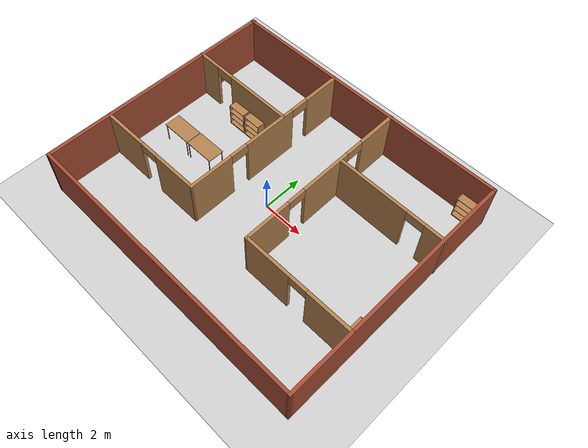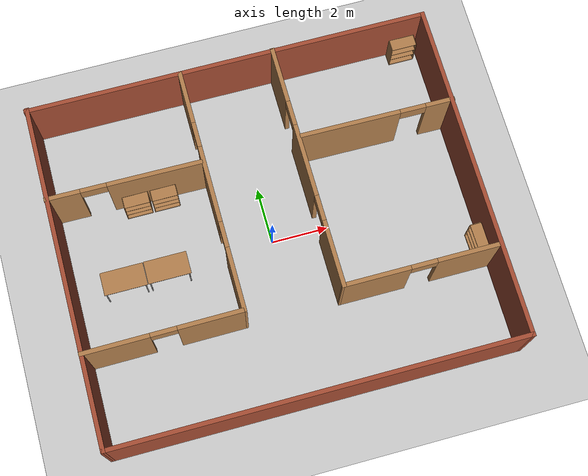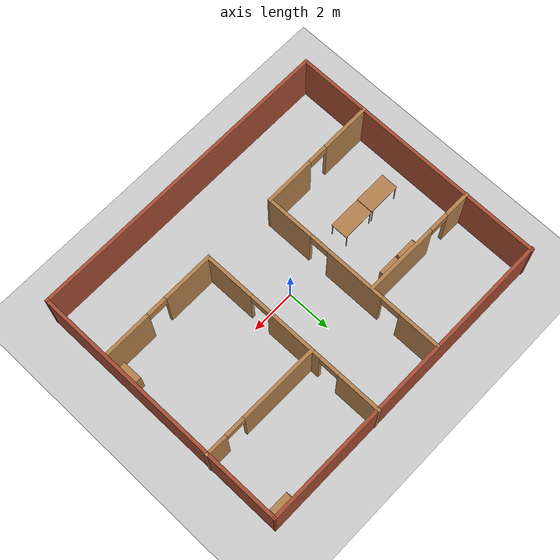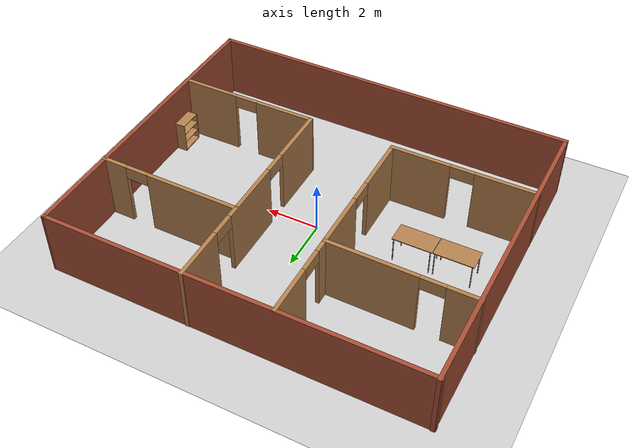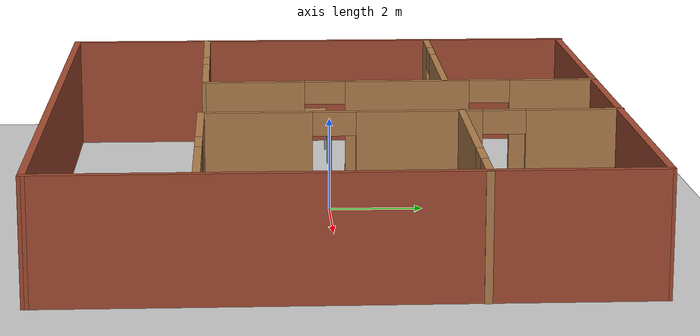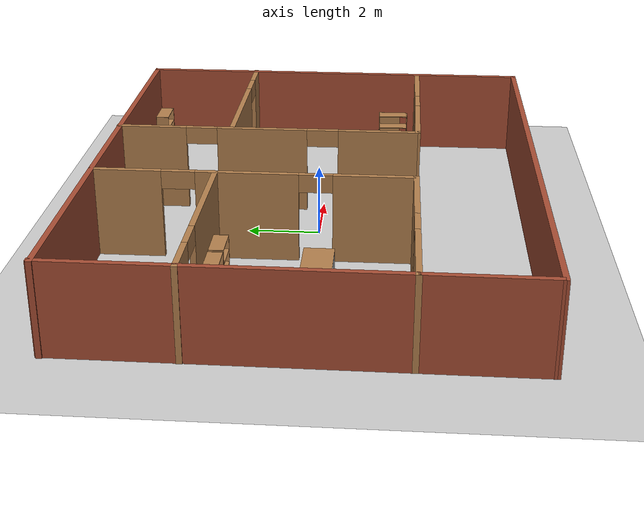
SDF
<sdf version="1.7">
 <world name="default">
  <light name="sun" type="directional">
   <pose>0 0 10 0 -0 0</pose>
   <diffuse>0.8 0.8 0.8 1</diffuse>
   <specular>0.2 0.2 0.2 1</specular>
   <attenuation>
    <range>1000</range>
    <constant>0.9</constant>
    <linear>0.01</linear>
    <quadratic>0.001</quadratic>
   </attenuation>
   <direction>-0.5 0.1 -0.9</direction>
   <spot><inner_angle>0</inner_angle><outer_angle>0</outer_angle><falloff>0</falloff></spot>
  </light>
  <model name="ground_plane">
   <static>1</static>
   <link name="link">
    <collision name="collision">
     <geometry><plane><normal>0 0 1</normal><size>100 100</size></plane></geometry>
     <surface>
      <contact><collide_bitmask>65535</collide_bitmask></contact>
      <friction><ode><mu>100</mu><mu2>50</mu2></ode></friction>
     </surface>
    </collision>
    <visual name="visual">
     <cast_shadows>0</cast_shadows>
     <geometry><plane><normal>0 0 1</normal><size>100 100</size></plane></geometry>
     <material>
      <script><uri>file://media/materials/scripts/gazebo.material</uri><name>Gazebo/Grey</name></script>
     </material>
    </visual>
   </link>
  </model>
  <gravity>0 0 -9.8</gravity>
  <magnetic_field>6e-06 2.3e-05 -4.2e-05</magnetic_field>
  <atmosphere type="adiabatic"/>
  <physics type="ode">
   <max_step_size>0.001</max_step_size>
   <real_time_factor>1</real_time_factor>
   <real_time_update_rate>1000</real_time_update_rate>
  </physics>
  <scene><ambient>0.4 0.4 0.4 1</ambient><background>0.7 0.7 0.7 1</background><shadows>1</shadows></scene>
  <audio><device>default</device></audio>
  <spherical_coordinates>
   <surface_model>EARTH_WGS84</surface_model>
   <latitude_deg>0</latitude_deg>
   <longitude_deg>0</longitude_deg>
   <elevation>0</elevation>
   <heading_deg>0</heading_deg>
  </spherical_coordinates>
  <model name="my_floor">
   <pose>0.013055 0.069718 0 0 -0 0</pose>
   <link name="Wall_20">
    <collision name="Wall_20_Collision">
     <geometry><box><size>14.249 0.15 2.5</size></box></geometry>
     <pose>0 0 1.25 0 -0 0</pose>
    </collision>
    <visual name="Wall_20_Visual">
     <pose>0 0 1.25 0 -0 0</pose>
     <geometry><box><size>14.249 0.15 2.5</size></box></geometry>
     <material>
      <script><uri>file://media/materials/scripts/gazebo.material</uri><name>Gazebo/Bricks</name></script>
      <ambient>1 1 1 1</ambient>
     </material>
     <meta><layer>0</layer></meta>
    </visual>
    <pose>-0.016798 5.87688 0 0 -0 -0.001631</pose>
   </link>
   <link name="Wall_21">
    <collision name="Wall_21_Collision">
     <geometry><box><size>11.9339 0.15 2.5</size></box></geometry>
     <pose>0 0 1.25 0 -0 0</pose>
    </collision>
    <visual name="Wall_21_Visual">
     <pose>0 0 1.25 0 -0 0</pose>
     <geometry><box><size>11.9339 0.15 2.5</size></box></geometry>
     <material>
      <script><uri>file://media/materials/scripts/gazebo.material</uri><name>Gazebo/Bricks</name></script>
      <ambient>1 1 1 1</ambient>
     </material>
     <meta><layer>0</layer></meta>
    </visual>
    <pose>7.0492 -0.026575 0 0 -0 -1.568</pose>
   </link>
   <link name="Wall_22">
    <collision name="Wall_22_Collision">
     <geometry><box><size>14.2747 0.15 2.5</size></box></geometry>
     <pose>0 0 1.25 0 -0 0</pose>
    </collision>
    <visual name="Wall_22_Visual">
     <pose>0 0 1.25 0 -0 0</pose>
     <geometry><box><size>14.2747 0.15 2.5</size></box></geometry>
     <material>
      <script><uri>file://media/materials/scripts/gazebo.material</uri><name>Gazebo/Bricks</name></script>
      <ambient>1 1 1 1</ambient>
     </material>
     <meta><layer>0</layer></meta>
    </visual>
    <pose>0.003336 -5.91852 0 0 -0 3.14159</pose>
   </link>
   <link name="Wall_23">
    <collision name="Wall_23_Collision">
     <geometry><box><size>11.9871 0.15 2.5</size></box></geometry>
     <pose>0 0 1.25 0 -0 0</pose>
    </collision>
    <visual name="Wall_23_Visual">
     <pose>0 0 1.25 0 -0 0</pose>
     <geometry><box><size>11.9871 0.15 2.5</size></box></geometry>
     <material>
      <script><uri>file://media/materials/scripts/gazebo.material</uri><name>Gazebo/Bricks</name></script>
      <ambient>1 1 1 1</ambient>
     </material>
     <meta><layer>0</layer></meta>
    </visual>
    <pose>-7.04572 2e-05 0 0 -0 1.56855</pose>
   </link>
   <link name="Wall_25">
    <pose>-4.3591 -2.7398 0 0 -0 0.004926</pose>
    <visual name="Wall_25_Visual_0">
     <pose>-1.60619 0 1.25 0 -0 0</pose>
     <geometry><box><size>2.33753 0.15 2.5</size></box></geometry>
     <material>
      <script><uri>file://media/materials/scripts/gazebo.material</uri><name>Gazebo/Wood</name></script>
      <ambient>1 1 1 1</ambient>
     </material>
     <meta><layer>0</layer></meta>
    </visual>
    <collision name="Wall_25_Collision_0">
     <geometry><box><size>2.33753 0.15 2.5</size></box></geometry>
     <pose>-1.60619 0 1.25 0 -0 0</pose>
    </collision>
    <visual name="Wall_25_Visual_1">
     <pose>1.61877 0 1.25 0 -0 0</pose>
     <geometry><box><size>2.31237 0.15 2.5</size></box></geometry>
     <material>
      <script><uri>file://media/materials/scripts/gazebo.material</uri><name>Gazebo/Wood</name></script>
      <ambient>1 1 1 1</ambient>
     </material>
     <meta><layer>0</layer></meta>
    </visual>
    <collision name="Wall_25_Collision_1">
     <geometry><box><size>2.31237 0.15 2.5</size></box></geometry>
     <pose>1.61877 0 1.25 0 -0 0</pose>
    </collision>
    <visual name="Wall_25_Visual_2">
     <pose>0.01258 0 2.25 0 -0 0</pose>
     <geometry><box><size>0.9 0.15 0.5</size></box></geometry>
     <material>
      <script><uri>file://media/materials/scripts/gazebo.material</uri><name>Gazebo/Wood</name></script>
      <ambient>1 1 1 1</ambient>
     </material>
     <meta><layer>0</layer></meta>
    </visual>
    <collision name="Wall_25_Collision_2">
     <geometry><box><size>0.9 0.15 0.5</size></box></geometry>
     <pose>0.01258 0 2.25 0 -0 0</pose>
    </collision>
   </link>
   <link name="Wall_26">
    <pose>-1.67248 1.56943 0 0 -0 1.57389</pose>
    <visual name="Wall_26_Visual_0">
     <pose>-3.24204 0 1.25 0 -0 0</pose>
     <geometry><box><size>2.25783 0.15 2.5</size></box></geometry>
     <material>
      <script><uri>file://media/materials/scripts/gazebo.material</uri><name>Gazebo/Wood</name></script>
      <ambient>1 1 1 1</ambient>
     </material>
     <meta><layer>0</layer></meta>
    </visual>
    <collision name="Wall_26_Collision_0">
     <geometry><box><size>2.25783 0.15 2.5</size></box></geometry>
     <pose>-3.24204 0 1.25 0 -0 0</pose>
    </collision>
    <visual name="Wall_26_Visual_1">
     <pose>0.159477 0 1.25 0 -0 0</pose>
     <geometry><box><size>2.7452 0.15 2.5</size></box></geometry>
     <material>
      <script><uri>file://media/materials/scripts/gazebo.material</uri><name>Gazebo/Wood</name></script>
      <ambient>1 1 1 1</ambient>
     </material>
     <meta><layer>0</layer></meta>
    </visual>
    <collision name="Wall_26_Collision_1">
     <geometry><box><size>2.7452 0.15 2.5</size></box></geometry>
     <pose>0.159477 0 1.25 0 -0 0</pose>
    </collision>
    <visual name="Wall_26_Visual_2">
     <pose>3.40151 0 1.25 0 -0 0</pose>
     <geometry><box><size>1.93888 0.15 2.5</size></box></geometry>
     <material>
      <script><uri>file://media/materials/scripts/gazebo.material</uri><name>Gazebo/Wood</name></script>
      <ambient>1 1 1 1</ambient>
     </material>
     <meta><layer>0</layer></meta>
    </visual>
    <collision name="Wall_26_Collision_2">
     <geometry><box><size>1.93888 0.15 2.5</size></box></geometry>
     <pose>3.40151 0 1.25 0 -0 0</pose>
    </collision>
    <visual name="Wall_26_Visual_3">
     <pose>-1.66312 0 2.25 0 -0 0</pose>
     <geometry><box><size>0.9 0.15 0.5</size></box></geometry>
     <material>
      <script><uri>file://media/materials/scripts/gazebo.material</uri><name>Gazebo/Wood</name></script>
      <ambient>1 1 1 1</ambient>
     </material>
     <meta><layer>0</layer></meta>
    </visual>
    <collision name="Wall_26_Collision_3">
     <geometry><box><size>0.9 0.15 0.5</size></box></geometry>
     <pose>-1.66312 0 2.25 0 -0 0</pose>
    </collision>
    <visual name="Wall_26_Visual_4">
     <pose>1.98208 0 2.25 0 -0 0</pose>
     <geometry><box><size>0.9 0.15 0.5</size></box></geometry>
     <material>
      <script><uri>file://media/materials/scripts/gazebo.material</uri><name>Gazebo/Wood</name></script>
      <ambient>1 1 1 1</ambient>
     </material>
     <meta><layer>0</layer></meta>
    </visual>
    <collision name="Wall_26_Collision_4">
     <geometry><box><size>0.9 0.15 0.5</size></box></geometry>
     <pose>1.98208 0 2.25 0 -0 0</pose>
    </collision>
   </link>
   <link name="Wall_28">
    <pose>1.63925 1.55613 0 0 -0 -1.56466</pose>
    <visual name="Wall_28_Visual_0">
     <pose>-3.38886 0 1.25 0 -0 0</pose>
     <geometry><box><size>2.0441 0.15 2.5</size></box></geometry>
     <material>
      <script><uri>file://media/materials/scripts/gazebo.material</uri><name>Gazebo/Wood</name></script>
      <ambient>1 1 1 1</ambient>
     </material>
     <meta><layer>0</layer></meta>
    </visual>
    <collision name="Wall_28_Collision_0">
     <geometry><box><size>2.0441 0.15 2.5</size></box></geometry>
     <pose>-3.38886 0 1.25 0 -0 0</pose>
    </collision>
    <visual name="Wall_28_Visual_1">
     <pose>-0.160414 0 1.25 0 -0 0</pose>
     <geometry><box><size>2.61279 0.15 2.5</size></box></geometry>
     <material>
      <script><uri>file://media/materials/scripts/gazebo.material</uri><name>Gazebo/Wood</name></script>
      <ambient>1 1 1 1</ambient>
     </material>
     <meta><layer>0</layer></meta>
    </visual>
    <collision name="Wall_28_Collision_1">
     <geometry><box><size>2.61279 0.15 2.5</size></box></geometry>
     <pose>-0.160414 0 1.25 0 -0 0</pose>
    </collision>
    <visual name="Wall_28_Visual_2">
     <pose>3.22845 0 1.25 0 -0 0</pose>
     <geometry><box><size>2.36493 0.15 2.5</size></box></geometry>
     <material>
      <script><uri>file://media/materials/scripts/gazebo.material</uri><name>Gazebo/Wood</name></script>
      <ambient>1 1 1 1</ambient>
     </material>
     <meta><layer>0</layer></meta>
    </visual>
    <collision name="Wall_28_Collision_2">
     <geometry><box><size>2.36493 0.15 2.5</size></box></geometry>
     <pose>3.22845 0 1.25 0 -0 0</pose>
    </collision>
    <visual name="Wall_28_Visual_3">
     <pose>-1.91681 0 2.25 0 -0 0</pose>
     <geometry><box><size>0.9 0.15 0.5</size></box></geometry>
     <material>
      <script><uri>file://media/materials/scripts/gazebo.material</uri><name>Gazebo/Wood</name></script>
      <ambient>1 1 1 1</ambient>
     </material>
     <meta><layer>0</layer></meta>
    </visual>
    <collision name="Wall_28_Collision_3">
     <geometry><box><size>0.9 0.15 0.5</size></box></geometry>
     <pose>-1.91681 0 2.25 0 -0 0</pose>
    </collision>
    <visual name="Wall_28_Visual_4">
     <pose>1.59598 0 2.25 0 -0 0</pose>
     <geometry><box><size>0.9 0.15 0.5</size></box></geometry>
     <material>
      <script><uri>file://media/materials/scripts/gazebo.material</uri><name>Gazebo/Wood</name></script>
      <ambient>1 1 1 1</ambient>
     </material>
     <meta><layer>0</layer></meta>
    </visual>
    <collision name="Wall_28_Collision_4">
     <geometry><box><size>0.9 0.15 0.5</size></box></geometry>
     <pose>1.59598 0 2.25 0 -0 0</pose>
    </collision>
   </link>
   <link name="Wall_29">
    <pose>4.35247 -2.7797 0 0 -0 0</pose>
    <visual name="Wall_29_Visual_0">
     <pose>-1.57921 0 1.25 0 -0 0</pose>
     <geometry><box><size>2.36482 0.15 2.5</size></box></geometry>
     <material>
      <script><uri>file://media/materials/scripts/gazebo.material</uri><name>Gazebo/Wood</name></script>
      <ambient>1 1 1 1</ambient>
     </material>
     <meta><layer>0</layer></meta>
    </visual>
    <collision name="Wall_29_Collision_0">
     <geometry><box><size>2.36482 0.15 2.5</size></box></geometry>
     <pose>-1.57921 0 1.25 0 -0 0</pose>
    </collision>
    <visual name="Wall_29_Visual_1">
     <pose>1.63241 0 1.25 0 -0 0</pose>
     <geometry><box><size>2.25842 0.15 2.5</size></box></geometry>
     <material>
      <script><uri>file://media/materials/scripts/gazebo.material</uri><name>Gazebo/Wood</name></script>
      <ambient>1 1 1 1</ambient>
     </material>
     <meta><layer>0</layer></meta>
    </visual>
    <collision name="Wall_29_Collision_1">
     <geometry><box><size>2.25842 0.15 2.5</size></box></geometry>
     <pose>1.63241 0 1.25 0 -0 0</pose>
    </collision>
    <visual name="Wall_29_Visual_2">
     <pose>0.053201 0 2.25 0 -0 0</pose>
     <geometry><box><size>0.9 0.15 0.5</size></box></geometry>
     <material>
      <script><uri>file://media/materials/scripts/gazebo.material</uri><name>Gazebo/Wood</name></script>
      <ambient>1 1 1 1</ambient>
     </material>
     <meta><layer>0</layer></meta>
    </visual>
    <collision name="Wall_29_Collision_2">
     <geometry><box><size>0.9 0.15 0.5</size></box></geometry>
     <pose>0.053201 0 2.25 0 -0 0</pose>
    </collision>
   </link>
   <link name="Wall_31">
    <pose>-4.3724 2.59354 0 0 -0 -0.009901</pose>
    <visual name="Wall_31_Visual_0">
     <pose>-2.15049 0 1.25 0 -0 0</pose>
     <geometry><box><size>1.22251 0.15 2.5</size></box></geometry>
     <material>
      <script><uri>file://media/materials/scripts/gazebo.material</uri><name>Gazebo/Wood</name></script>
      <ambient>1 1 1 1</ambient>
     </material>
     <meta><layer>0</layer></meta>
    </visual>
    <collision name="Wall_31_Collision_0">
     <geometry><box><size>1.22251 0.15 2.5</size></box></geometry>
     <pose>-2.15049 0 1.25 0 -0 0</pose>
    </collision>
    <visual name="Wall_31_Visual_1">
     <pose>1.06126 0 1.25 0 -0 0</pose>
     <geometry><box><size>3.40099 0.15 2.5</size></box></geometry>
     <material>
      <script><uri>file://media/materials/scripts/gazebo.material</uri><name>Gazebo/Wood</name></script>
      <ambient>1 1 1 1</ambient>
     </material>
     <meta><layer>0</layer></meta>
    </visual>
    <collision name="Wall_31_Collision_1">
     <geometry><box><size>3.40099 0.15 2.5</size></box></geometry>
     <pose>1.06126 0 1.25 0 -0 0</pose>
    </collision>
    <visual name="Wall_31_Visual_2">
     <pose>-1.08924 0 2.25 0 -0 0</pose>
     <geometry><box><size>0.9 0.15 0.5</size></box></geometry>
     <material>
      <script><uri>file://media/materials/scripts/gazebo.material</uri><name>Gazebo/Wood</name></script>
      <ambient>1 1 1 1</ambient>
     </material>
     <meta><layer>0</layer></meta>
    </visual>
    <collision name="Wall_31_Collision_2">
     <geometry><box><size>0.9 0.15 0.5</size></box></geometry>
     <pose>-1.08924 0 2.25 0 -0 0</pose>
    </collision>
   </link>
   <link name="Wall_33">
    <pose>4.35247 2.56694 0 0 -0 -0.009804</pose>
    <visual name="Wall_33_Visual_0">
     <pose>-0.967502 0 1.25 0 -0 0</pose>
     <geometry><box><size>3.6417 0.15 2.5</size></box></geometry>
     <material>
      <script><uri>file://media/materials/scripts/gazebo.material</uri><name>Gazebo/Wood</name></script>
      <ambient>1 1 1 1</ambient>
     </material>
     <meta><layer>0</layer></meta>
    </visual>
    <collision name="Wall_33_Collision_0">
     <geometry><box><size>3.6417 0.15 2.5</size></box></geometry>
     <pose>-0.967502 0 1.25 0 -0 0</pose>
    </collision>
    <visual name="Wall_33_Visual_1">
     <pose>2.27085 0 1.25 0 -0 0</pose>
     <geometry><box><size>1.035 0.15 2.5</size></box></geometry>
     <material>
      <script><uri>file://media/materials/scripts/gazebo.material</uri><name>Gazebo/Wood</name></script>
      <ambient>1 1 1 1</ambient>
     </material>
     <meta><layer>0</layer></meta>
    </visual>
    <collision name="Wall_33_Collision_1">
     <geometry><box><size>1.035 0.15 2.5</size></box></geometry>
     <pose>2.27085 0 1.25 0 -0 0</pose>
    </collision>
    <visual name="Wall_33_Visual_2">
     <pose>1.30335 0 2.25 0 -0 0</pose>
     <geometry><box><size>0.9 0.15 0.5</size></box></geometry>
     <material>
      <script><uri>file://media/materials/scripts/gazebo.material</uri><name>Gazebo/Wood</name></script>
      <ambient>1 1 1 1</ambient>
     </material>
     <meta><layer>0</layer></meta>
    </visual>
    <collision name="Wall_33_Collision_2">
     <geometry><box><size>0.9 0.15 0.5</size></box></geometry>
     <pose>1.30335 0 2.25 0 -0 0</pose>
    </collision>
   </link>
   <static>1</static>
  </model>
  <model name="bookshelf">
   <static>1</static>
   <link name="link">
    <inertial><mass>1</mass></inertial>
    <collision name="back">
     <pose>0 0.005 0.6 0 -0 0</pose>
     <geometry><box><size>0.9 0.01 1.2</size></box></geometry>
    </collision>
    <visual name="visual1">
     <pose>0 0.005 0.6 0 -0 0</pose>
     <geometry><box><size>0.9 0.01 1.2</size></box></geometry>
     <material>
      <script><uri>file://media/materials/scripts/gazebo.material</uri><name>Gazebo/Wood</name></script>
     </material>
    </visual>
    <collision name="left_side">
     <pose>0.45 -0.195 0.6 0 -0 0</pose>
     <geometry><box><size>0.02 0.4 1.2</size></box></geometry>
    </collision>
    <visual name="visual2">
     <pose>0.45 -0.195 0.6 0 -0 0</pose>
     <geometry><box><size>0.02 0.4 1.2</size></box></geometry>
     <material>
      <script><uri>file://media/materials/scripts/gazebo.material</uri><name>Gazebo/Wood</name></script>
     </material>
    </visual>
    <collision name="right_side">
     <pose>-0.45 -0.195 0.6 0 -0 0</pose>
     <geometry><box><size>0.02 0.4 1.2</size></box></geometry>
    </collision>
    <visual name="visual3">
     <pose>-0.45 -0.195 0.6 0 -0 0</pose>
     <geometry><box><size>0.02 0.4 1.2</size></box></geometry>
     <material>
      <script><uri>file://media/materials/scripts/gazebo.material</uri><name>Gazebo/Wood</name></script>
     </material>
    </visual>
    <collision name="bottom">
     <pose>0 -0.195 0.03 0 -0 0</pose>
     <geometry><box><size>0.88 0.4 0.06</size></box></geometry>
    </collision>
    <visual name="visual4">
     <pose>0 -0.195 0.03 0 -0 0</pose>
     <geometry><box><size>0.88 0.4 0.06</size></box></geometry>
     <material>
      <script><uri>file://media/materials/scripts/gazebo.material</uri><name>Gazebo/Wood</name></script>
     </material>
    </visual>
    <collision name="top">
     <pose>0 -0.195 1.19 0 -0 0</pose>
     <geometry><box><size>0.88 0.4 0.02</size></box></geometry>
    </collision>
    <visual name="visual5">
     <pose>0 -0.195 1.19 0 -0 0</pose>
     <geometry><box><size>0.88 0.4 0.02</size></box></geometry>
     <material>
      <script><uri>file://media/materials/scripts/gazebo.material</uri><name>Gazebo/Wood</name></script>
     </material>
    </visual>
    <collision name="low_shelf">
     <pose>0 -0.195 0.43 0 -0 0</pose>
     <geometry><box><size>0.88 0.4 0.02</size></box></geometry>
    </collision>
    <visual name="visual6">
     <pose>0 -0.195 0.43 0 -0 0</pose>
     <geometry><box><size>0.88 0.4 0.02</size></box></geometry>
     <material>
      <script><uri>file://media/materials/scripts/gazebo.material</uri><name>Gazebo/Wood</name></script>
     </material>
    </visual>
    <collision name="high_shelf">
     <pose>0 -0.195 0.8 0 -0 0</pose>
     <geometry><box><size>0.88 0.4 0.02</size></box></geometry>
    </collision>
    <visual name="visual7">
     <pose>0 -0.195 0.8 0 -0 0</pose>
     <geometry><box><size>0.88 0.4 0.02</size></box></geometry>
     <material>
      <script><uri>file://media/materials/scripts/gazebo.material</uri><name>Gazebo/Wood</name></script>
     </material>
    </visual>
   </link>
   <pose>-4.21555 2.5444 0 0 -0 0</pose>
  </model>
  <model name="bookshelf_0">
   <static>1</static>
   <link name="link">
    <inertial><mass>1</mass></inertial>
    <collision name="back">
     <pose>0 0.005 0.6 0 -0 0</pose>
     <geometry><box><size>0.9 0.01 1.2</size></box></geometry>
    </collision>
    <visual name="visual1">
     <pose>0 0.005 0.6 0 -0 0</pose>
     <geometry><box><size>0.9 0.01 1.2</size></box></geometry>
     <material>
      <script><uri>file://media/materials/scripts/gazebo.material</uri><name>Gazebo/Wood</name></script>
     </material>
    </visual>
    <collision name="left_side">
     <pose>0.45 -0.195 0.6 0 -0 0</pose>
     <geometry><box><size>0.02 0.4 1.2</size></box></geometry>
    </collision>
    <visual name="visual2">
     <pose>0.45 -0.195 0.6 0 -0 0</pose>
     <geometry><box><size>0.02 0.4 1.2</size></box></geometry>
     <material>
      <script><uri>file://media/materials/scripts/gazebo.material</uri><name>Gazebo/Wood</name></script>
     </material>
    </visual>
    <collision name="right_side">
     <pose>-0.45 -0.195 0.6 0 -0 0</pose>
     <geometry><box><size>0.02 0.4 1.2</size></box></geometry>
    </collision>
    <visual name="visual3">
     <pose>-0.45 -0.195 0.6 0 -0 0</pose>
     <geometry><box><size>0.02 0.4 1.2</size></box></geometry>
     <material>
      <script><uri>file://media/materials/scripts/gazebo.material</uri><name>Gazebo/Wood</name></script>
     </material>
    </visual>
    <collision name="bottom">
     <pose>0 -0.195 0.03 0 -0 0</pose>
     <geometry><box><size>0.88 0.4 0.06</size></box></geometry>
    </collision>
    <visual name="visual4">
     <pose>0 -0.195 0.03 0 -0 0</pose>
     <geometry><box><size>0.88 0.4 0.06</size></box></geometry>
     <material>
      <script><uri>file://media/materials/scripts/gazebo.material</uri><name>Gazebo/Wood</name></script>
     </material>
    </visual>
    <collision name="top">
     <pose>0 -0.195 1.19 0 -0 0</pose>
     <geometry><box><size>0.88 0.4 0.02</size></box></geometry>
    </collision>
    <visual name="visual5">
     <pose>0 -0.195 1.19 0 -0 0</pose>
     <geometry><box><size>0.88 0.4 0.02</size></box></geometry>
     <material>
      <script><uri>file://media/materials/scripts/gazebo.material</uri><name>Gazebo/Wood</name></script>
     </material>
    </visual>
    <collision name="low_shelf">
     <pose>0 -0.195 0.43 0 -0 0</pose>
     <geometry><box><size>0.88 0.4 0.02</size></box></geometry>
    </collision>
    <visual name="visual6">
     <pose>0 -0.195 0.43 0 -0 0</pose>
     <geometry><box><size>0.88 0.4 0.02</size></box></geometry>
     <material>
      <script><uri>file://media/materials/scripts/gazebo.material</uri><name>Gazebo/Wood</name></script>
     </material>
    </visual>
    <collision name="high_shelf">
     <pose>0 -0.195 0.8 0 -0 0</pose>
     <geometry><box><size>0.88 0.4 0.02</size></box></geometry>
    </collision>
    <visual name="visual7">
     <pose>0 -0.195 0.8 0 -0 0</pose>
     <geometry><box><size>0.88 0.4 0.02</size></box></geometry>
     <material>
      <script><uri>file://media/materials/scripts/gazebo.material</uri><name>Gazebo/Wood</name></script>
     </material>
    </visual>
   </link>
   <pose>6.37603 5.82879 0 0 -0 0</pose>
  </model>
  <model name="bookshelf_1">
   <static>1</static>
   <link name="link">
    <inertial><mass>1</mass></inertial>
    <collision name="back">
     <pose>0 0.005 0.6 0 -0 0</pose>
     <geometry><box><size>0.9 0.01 1.2</size></box></geometry>
    </collision>
    <visual name="visual1">
     <pose>0 0.005 0.6 0 -0 0</pose>
     <geometry><box><size>0.9 0.01 1.2</size></box></geometry>
     <material>
      <script><uri>file://media/materials/scripts/gazebo.material</uri><name>Gazebo/Wood</name></script>
     </material>
    </visual>
    <collision name="left_side">
     <pose>0.45 -0.195 0.6 0 -0 0</pose>
     <geometry><box><size>0.02 0.4 1.2</size></box></geometry>
    </collision>
    <visual name="visual2">
     <pose>0.45 -0.195 0.6 0 -0 0</pose>
     <geometry><box><size>0.02 0.4 1.2</size></box></geometry>
     <material>
      <script><uri>file://media/materials/scripts/gazebo.material</uri><name>Gazebo/Wood</name></script>
     </material>
    </visual>
    <collision name="right_side">
     <pose>-0.45 -0.195 0.6 0 -0 0</pose>
     <geometry><box><size>0.02 0.4 1.2</size></box></geometry>
    </collision>
    <visual name="visual3">
     <pose>-0.45 -0.195 0.6 0 -0 0</pose>
     <geometry><box><size>0.02 0.4 1.2</size></box></geometry>
     <material>
      <script><uri>file://media/materials/scripts/gazebo.material</uri><name>Gazebo/Wood</name></script>
     </material>
    </visual>
    <collision name="bottom">
     <pose>0 -0.195 0.03 0 -0 0</pose>
     <geometry><box><size>0.88 0.4 0.06</size></box></geometry>
    </collision>
    <visual name="visual4">
     <pose>0 -0.195 0.03 0 -0 0</pose>
     <geometry><box><size>0.88 0.4 0.06</size></box></geometry>
     <material>
      <script><uri>file://media/materials/scripts/gazebo.material</uri><name>Gazebo/Wood</name></script>
     </material>
    </visual>
    <collision name="top">
     <pose>0 -0.195 1.19 0 -0 0</pose>
     <geometry><box><size>0.88 0.4 0.02</size></box></geometry>
    </collision>
    <visual name="visual5">
     <pose>0 -0.195 1.19 0 -0 0</pose>
     <geometry><box><size>0.88 0.4 0.02</size></box></geometry>
     <material>
      <script><uri>file://media/materials/scripts/gazebo.material</uri><name>Gazebo/Wood</name></script>
     </material>
    </visual>
    <collision name="low_shelf">
     <pose>0 -0.195 0.43 0 -0 0</pose>
     <geometry><box><size>0.88 0.4 0.02</size></box></geometry>
    </collision>
    <visual name="visual6">
     <pose>0 -0.195 0.43 0 -0 0</pose>
     <geometry><box><size>0.88 0.4 0.02</size></box></geometry>
     <material>
      <script><uri>file://media/materials/scripts/gazebo.material</uri><name>Gazebo/Wood</name></script>
     </material>
    </visual>
    <collision name="high_shelf">
     <pose>0 -0.195 0.8 0 -0 0</pose>
     <geometry><box><size>0.88 0.4 0.02</size></box></geometry>
    </collision>
    <visual name="visual7">
     <pose>0 -0.195 0.8 0 -0 0</pose>
     <geometry><box><size>0.88 0.4 0.02</size></box></geometry>
     <material>
      <script><uri>file://media/materials/scripts/gazebo.material</uri><name>Gazebo/Wood</name></script>
     </material>
    </visual>
   </link>
   <pose>-3.2307 2.54375 0 0 -0 0</pose>
  </model>
  <model name="bookshelf_2">
   <static>1</static>
   <link name="link">
    <inertial><mass>1</mass></inertial>
    <collision name="back">
     <pose>0 0.005 0.6 0 -0 0</pose>
     <geometry><box><size>0.9 0.01 1.2</size></box></geometry>
    </collision>
    <visual name="visual1">
     <pose>0 0.005 0.6 0 -0 0</pose>
     <geometry><box><size>0.9 0.01 1.2</size></box></geometry>
     <material>
      <script><uri>file://media/materials/scripts/gazebo.material</uri><name>Gazebo/Wood</name></script>
     </material>
    </visual>
    <collision name="left_side">
     <pose>0.45 -0.195 0.6 0 -0 0</pose>
     <geometry><box><size>0.02 0.4 1.2</size></box></geometry>
    </collision>
    <visual name="visual2">
     <pose>0.45 -0.195 0.6 0 -0 0</pose>
     <geometry><box><size>0.02 0.4 1.2</size></box></geometry>
     <material>
      <script><uri>file://media/materials/scripts/gazebo.material</uri><name>Gazebo/Wood</name></script>
     </material>
    </visual>
    <collision name="right_side">
     <pose>-0.45 -0.195 0.6 0 -0 0</pose>
     <geometry><box><size>0.02 0.4 1.2</size></box></geometry>
    </collision>
    <visual name="visual3">
     <pose>-0.45 -0.195 0.6 0 -0 0</pose>
     <geometry><box><size>0.02 0.4 1.2</size></box></geometry>
     <material>
      <script><uri>file://media/materials/scripts/gazebo.material</uri><name>Gazebo/Wood</name></script>
     </material>
    </visual>
    <collision name="bottom">
     <pose>0 -0.195 0.03 0 -0 0</pose>
     <geometry><box><size>0.88 0.4 0.06</size></box></geometry>
    </collision>
    <visual name="visual4">
     <pose>0 -0.195 0.03 0 -0 0</pose>
     <geometry><box><size>0.88 0.4 0.06</size></box></geometry>
     <material>
      <script><uri>file://media/materials/scripts/gazebo.material</uri><name>Gazebo/Wood</name></script>
     </material>
    </visual>
    <collision name="top">
     <pose>0 -0.195 1.19 0 -0 0</pose>
     <geometry><box><size>0.88 0.4 0.02</size></box></geometry>
    </collision>
    <visual name="visual5">
     <pose>0 -0.195 1.19 0 -0 0</pose>
     <geometry><box><size>0.88 0.4 0.02</size></box></geometry>
     <material>
      <script><uri>file://media/materials/scripts/gazebo.material</uri><name>Gazebo/Wood</name></script>
     </material>
    </visual>
    <collision name="low_shelf">
     <pose>0 -0.195 0.43 0 -0 0</pose>
     <geometry><box><size>0.88 0.4 0.02</size></box></geometry>
    </collision>
    <visual name="visual6">
     <pose>0 -0.195 0.43 0 -0 0</pose>
     <geometry><box><size>0.88 0.4 0.02</size></box></geometry>
     <material>
      <script><uri>file://media/materials/scripts/gazebo.material</uri><name>Gazebo/Wood</name></script>
     </material>
    </visual>
    <collision name="high_shelf">
     <pose>0 -0.195 0.8 0 -0 0</pose>
     <geometry><box><size>0.88 0.4 0.02</size></box></geometry>
    </collision>
    <visual name="visual7">
     <pose>0 -0.195 0.8 0 -0 0</pose>
     <geometry><box><size>0.88 0.4 0.02</size></box></geometry>
     <material>
      <script><uri>file://media/materials/scripts/gazebo.material</uri><name>Gazebo/Wood</name></script>
     </material>
    </visual>
   </link>
   <pose>6.98877 -1.9584 -0.014572 0 0 -1.54973</pose>
  </model>
  <model name="table">
   <static>1</static>
   <link name="link">
    <collision name="surface">
     <pose>0 0 1 0 -0 0</pose>
     <geometry><box><size>1.5 0.8 0.03</size></box></geometry>
     <surface><friction><ode><mu>0.6</mu><mu2>0.6</mu2></ode></friction></surface>
    </collision>
    <visual name="visual1">
     <pose>0 0 1 0 -0 0</pose>
     <geometry><box><size>1.5 0.8 0.03</size></box></geometry>
     <material>
      <script><uri>file://media/materials/scripts/gazebo.material</uri><name>Gazebo/Wood</name></script>
     </material>
    </visual>
    <collision name="front_left_leg">
     <pose>0.68 0.38 0.5 0 -0 0</pose>
     <geometry><cylinder><radius>0.02</radius><length>1</length></cylinder></geometry>
    </collision>
    <visual name="front_left_leg">
     <pose>0.68 0.38 0.5 0 -0 0</pose>
     <geometry><cylinder><radius>0.02</radius><length>1</length></cylinder></geometry>
     <material>
      <script><uri>file://media/materials/scripts/gazebo.material</uri><name>Gazebo/Grey</name></script>
     </material>
    </visual>
    <collision name="front_right_leg">
     <pose>0.68 -0.38 0.5 0 -0 0</pose>
     <geometry><cylinder><radius>0.02</radius><length>1</length></cylinder></geometry>
    </collision>
    <visual name="front_right_leg">
     <pose>0.68 -0.38 0.5 0 -0 0</pose>
     <geometry><cylinder><radius>0.02</radius><length>1</length></cylinder></geometry>
     <material>
      <script><uri>file://media/materials/scripts/gazebo.material</uri><name>Gazebo/Grey</name></script>
     </material>
    </visual>
    <collision name="back_right_leg">
     <pose>-0.68 -0.38 0.5 0 -0 0</pose>
     <geometry><cylinder><radius>0.02</radius><length>1</length></cylinder></geometry>
    </collision>
    <visual name="back_right_leg">
     <pose>-0.68 -0.38 0.5 0 -0 0</pose>
     <geometry><cylinder><radius>0.02</radius><length>1</length></cylinder></geometry>
     <material>
      <script><uri>file://media/materials/scripts/gazebo.material</uri><name>Gazebo/Grey</name></script>
     </material>
    </visual>
    <collision name="back_left_leg">
     <pose>-0.68 0.38 0.5 0 -0 0</pose>
     <geometry><cylinder><radius>0.02</radius><length>1</length></cylinder></geometry>
    </collision>
    <visual name="back_left_leg">
     <pose>-0.68 0.38 0.5 0 -0 0</pose>
     <geometry><cylinder><radius>0.02</radius><length>1</length></cylinder></geometry>
     <material>
      <script><uri>file://media/materials/scripts/gazebo.material</uri><name>Gazebo/Grey</name></script>
     </material>
    </visual>
   </link>
   <pose>-5.26309 -0.222974 0 0 -0 0</pose>
  </model>
  <model name="table_0">
   <static>1</static>
   <link name="link">
    <collision name="surface">
     <pose>0 0 1 0 -0 0</pose>
     <geometry><box><size>1.5 0.8 0.03</size></box></geometry>
     <surface><friction><ode><mu>0.6</mu><mu2>0.6</mu2></ode></friction></surface>
    </collision>
    <visual name="visual1">
     <pose>0 0 1 0 -0 0</pose>
     <geometry><box><size>1.5 0.8 0.03</size></box></geometry>
     <material>
      <script><uri>file://media/materials/scripts/gazebo.material</uri><name>Gazebo/Wood</name></script>
     </material>
    </visual>
    <collision name="front_left_leg">
     <pose>0.68 0.38 0.5 0 -0 0</pose>
     <geometry><cylinder><radius>0.02</radius><length>1</length></cylinder></geometry>
    </collision>
    <visual name="front_left_leg">
     <pose>0.68 0.38 0.5 0 -0 0</pose>
     <geometry><cylinder><radius>0.02</radius><length>1</length></cylinder></geometry>
     <material>
      <script><uri>file://media/materials/scripts/gazebo.material</uri><name>Gazebo/Grey</name></script>
     </material>
    </visual>
    <collision name="front_right_leg">
     <pose>0.68 -0.38 0.5 0 -0 0</pose>
     <geometry><cylinder><radius>0.02</radius><length>1</length></cylinder></geometry>
    </collision>
    <visual name="front_right_leg">
     <pose>0.68 -0.38 0.5 0 -0 0</pose>
     <geometry><cylinder><radius>0.02</radius><length>1</length></cylinder></geometry>
     <material>
      <script><uri>file://media/materials/scripts/gazebo.material</uri><name>Gazebo/Grey</name></script>
     </material>
    </visual>
    <collision name="back_right_leg">
     <pose>-0.68 -0.38 0.5 0 -0 0</pose>
     <geometry><cylinder><radius>0.02</radius><length>1</length></cylinder></geometry>
    </collision>
    <visual name="back_right_leg">
     <pose>-0.68 -0.38 0.5 0 -0 0</pose>
     <geometry><cylinder><radius>0.02</radius><length>1</length></cylinder></geometry>
     <material>
      <script><uri>file://media/materials/scripts/gazebo.material</uri><name>Gazebo/Grey</name></script>
     </material>
    </visual>
    <collision name="back_left_leg">
     <pose>-0.68 0.38 0.5 0 -0 0</pose>
     <geometry><cylinder><radius>0.02</radius><length>1</length></cylinder></geometry>
    </collision>
    <visual name="back_left_leg">
     <pose>-0.68 0.38 0.5 0 -0 0</pose>
     <geometry><cylinder><radius>0.02</radius><length>1</length></cylinder></geometry>
     <material>
      <script><uri>file://media/materials/scripts/gazebo.material</uri><name>Gazebo/Grey</name></script>
     </material>
    </visual>
   </link>
   <pose>-3.74452 -0.214621 0 0 -0 0</pose>
  </model>
 </world>
</sdf>
